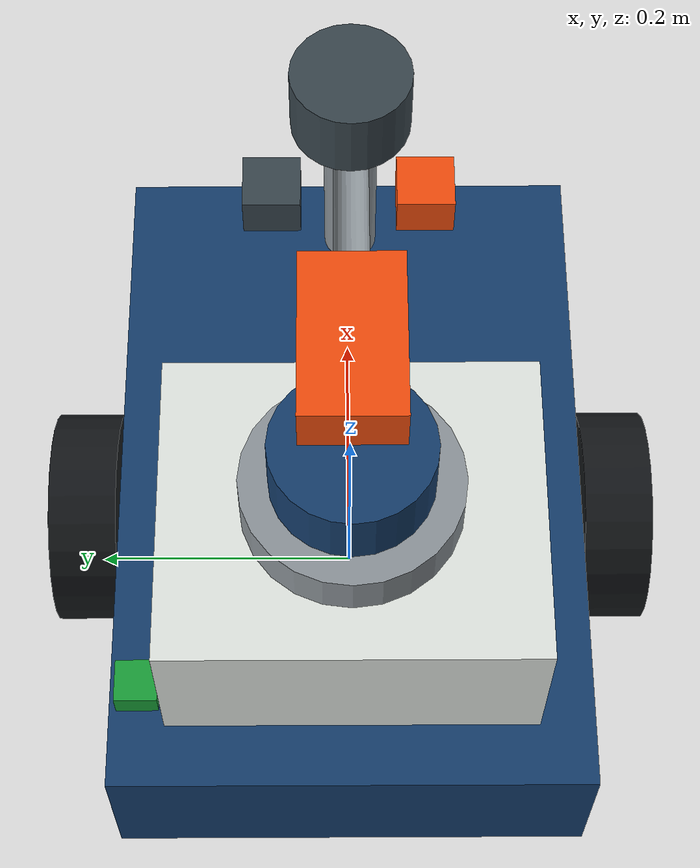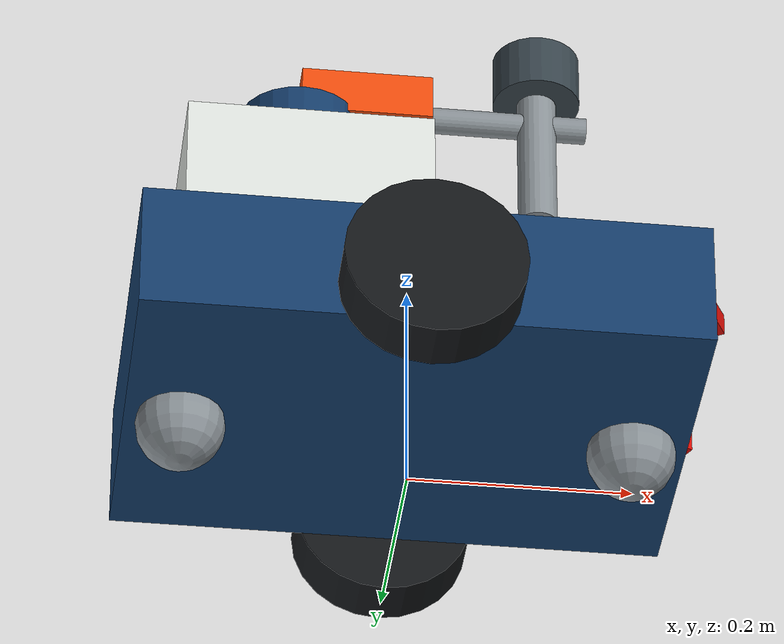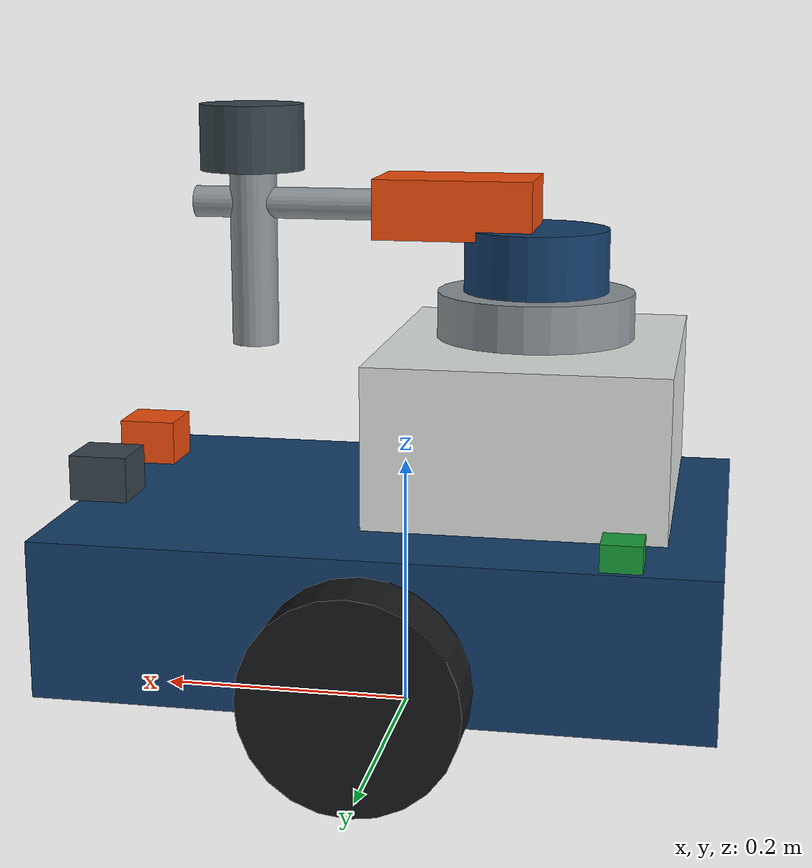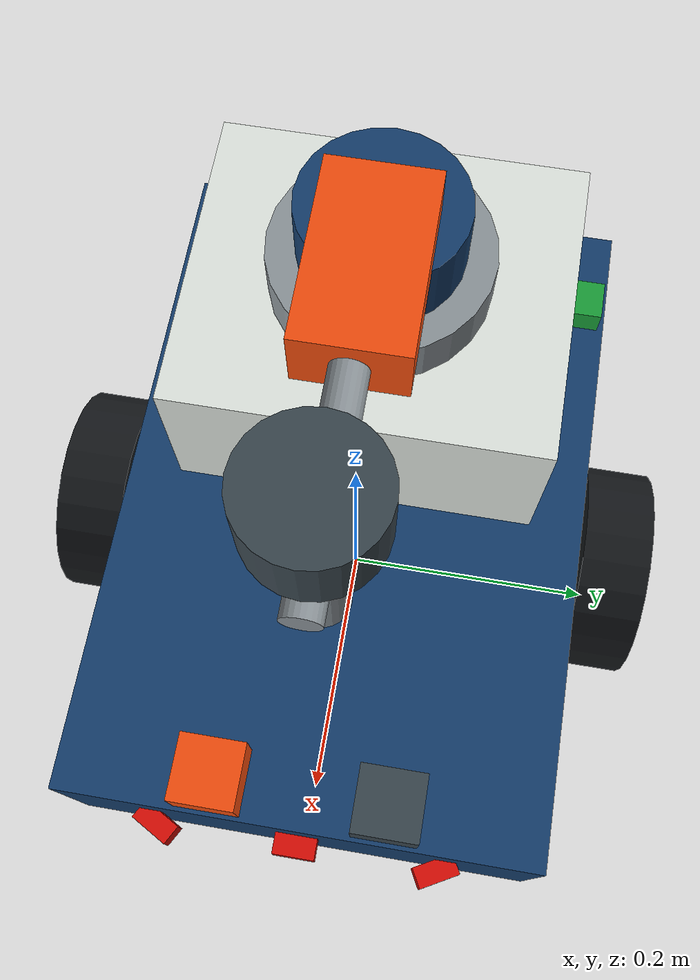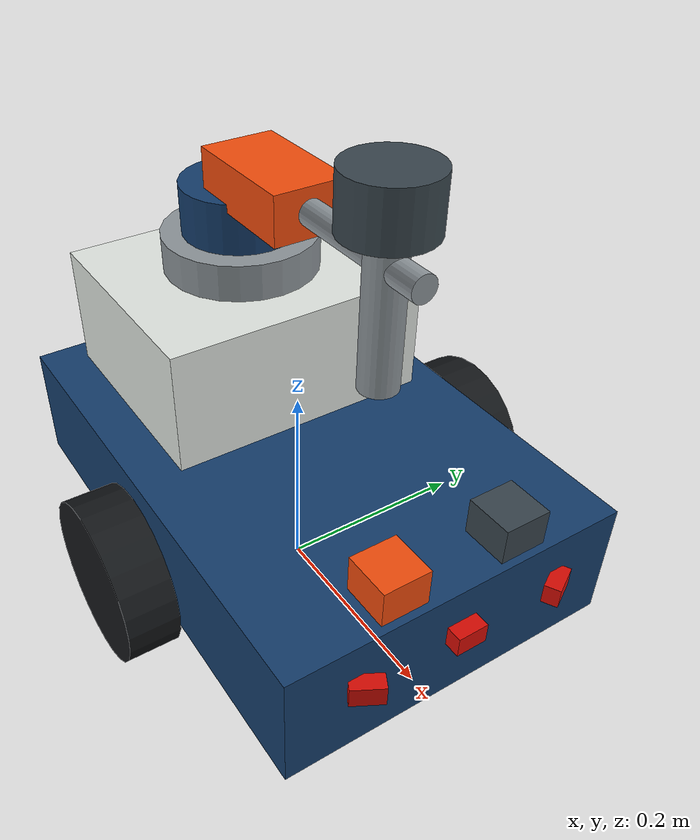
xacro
<robot name="fire_rover" xmlns:xacro="http://www.ros.org/wiki/xacro">
<xacro:arg name="use_sim" default="false"/>
<!--
 ======================= DIMENSIONS (metres / kg) =======================
-->
<!--
 Keep wheel_radius and wheel_separation in sync with config/ros2_controllers.yaml
-->
<xacro:property name="chassis_length" value="0.50"/>
<xacro:property name="chassis_width" value="0.34"/>
<xacro:property name="chassis_height" value="0.12"/>
<xacro:property name="chassis_mass" value="6.0"/>
<xacro:property name="ground_clearance" value="0.05"/>
<!-- height of base_link above the floor -->
<xacro:property name="base_z" value="${ground_clearance + chassis_height/2}"/>
<xacro:property name="wheel_radius" value="0.08"/>
<xacro:property name="wheel_width" value="0.05"/>
<xacro:property name="wheel_mass" value="0.6"/>
<xacro:property name="wheel_separation" value="0.40"/>
<xacro:property name="wheel_x" value="0.0"/>
<xacro:property name="caster_radius" value="0.04"/>
<xacro:property name="caster_mass" value="0.1"/>
<xacro:property name="tank_length" value="0.22"/>
<xacro:property name="tank_width" value="0.26"/>
<xacro:property name="tank_height" value="0.12"/>
<xacro:property name="tank_mass" value="3.0"/>
<!--
 ============================== MODULES =================================
-->
<xacro:include filename="common/materials.xacro"/>
<xacro:include filename="common/inertials.xacro"/>
<xacro:include filename="chassis.xacro"/>
<xacro:include filename="sensors.xacro"/>
<xacro:include filename="turret.xacro"/>
<xacro:include filename="ros2_control.xacro"/>
<xacro:include filename="gazebo.xacro"/>
<!--
 ============================== ASSEMBLY ================================
-->
<!-- Base -->
<xacro:chassis/>
<xacro:drive_wheel name="left" y_pos="${ wheel_separation/2}"/>
<xacro:drive_wheel name="right" y_pos="${-wheel_separation/2}"/>
<xacro:caster name="front" x_pos="${ chassis_length/2 - 0.05}"/>
<xacro:caster name="rear" x_pos="${-chassis_length/2 + 0.05}"/>
<!-- Navigation sensors -->
<xacro:lidar x="0.12" z="0.34"/>
<xacro:box_sensor name="imu" xyz="0 0 0" sx="0.02" sy="0.02" sz="0.005" mass="0.02"/>
<!-- Fire detection sensors (front deck / front face) -->
<xacro:camera name="camera" xyz="0.225 0.06 0.085" mass="0.10"/>
<xacro:camera name="thermal_camera" xyz="0.225 -0.06 0.085" mass="0.05" material="thermal_orange"/>
<!--
 IR flame sensors: left / centre / right, splayed +-0.5 rad for bearing estimation
-->
<xacro:box_sensor name="flame_sensor_left" xyz="0.2575 0.10 0.015" rpy="0 0 0.5" sx="0.015" sy="0.03" sz="0.02" mass="0.01" material="fire_red"/>
<xacro:box_sensor name="flame_sensor_center" xyz="0.2575 0.00 0.015" rpy="0 0 0.0" sx="0.015" sy="0.03" sz="0.02" mass="0.01" material="fire_red"/>
<xacro:box_sensor name="flame_sensor_right" xyz="0.2575 -0.10 0.015" rpy="0 0 -0.5" sx="0.015" sy="0.03" sz="0.02" mass="0.01" material="fire_red"/>
<!-- Gas / smoke sensor, rear deck beside the tank -->
<xacro:box_sensor name="gas_sensor" xyz="-0.18 0.15 0.07" sx="0.03" sy="0.03" sz="0.02" mass="0.02" material="gas_green"/>
<!-- Fire-fighting payload -->
<xacro:water_tank x="-0.10"/>
<xacro:fire_turret/>
<!-- Hardware interface + simulation -->
<xacro:fire_rover_ros2_control/>
<xacro:if value="$(arg use_sim)">
<xacro:gazebo_extensions/>
</xacro:if>
</robot>

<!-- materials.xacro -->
<robot xmlns:xacro="http://www.ros.org/wiki/xacro">
  <material name="rover_blue">
    <color rgba="0.08 0.24 0.42 1.0"/>
  </material>
  <material name="wheel_black">
    <color rgba="0.08 0.09 0.10 1.0"/>
  </material>
  <material name="metal_gray">
    <color rgba="0.55 0.58 0.60 1.0"/>
  </material>
  <material name="sensor_gray">
    <color rgba="0.22 0.27 0.30 1.0"/>
  </material>
  <material name="thermal_orange">
    <color rgba="0.95 0.30 0.05 1.0"/>
  </material>
  <material name="fire_red">
    <color rgba="0.85 0.05 0.02 1.0"/>
  </material>
  <material name="gas_green">
    <color rgba="0.10 0.62 0.22 1.0"/>
  </material>
  <material name="tank_white">
    <color rgba="0.88 0.90 0.88 1.0"/>
  </material>
</robot>

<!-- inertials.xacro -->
<robot xmlns:xacro="http://www.ros.org/wiki/xacro">
  <xacro:macro name="box_inertia" params="mass x y z">
    <inertial>
      <mass value="${mass}"/>
      <inertia
        ixx="${mass * (y * y + z * z) / 12}"
        ixy="0" ixz="0"
        iyy="${mass * (x * x + z * z) / 12}"
        iyz="0"
        izz="${mass * (x * x + y * y) / 12}"/>
    </inertial>
  </xacro:macro>

  <xacro:macro name="cylinder_inertia" params="mass radius length origin_rpy:='0 0 0'">
    <inertial>
      <origin xyz="0 0 0" rpy="${origin_rpy}"/>
      <mass value="${mass}"/>
      <inertia
        ixx="${mass * (3 * radius * radius + length * length) / 12}"
        ixy="0" ixz="0"
        iyy="${mass * (3 * radius * radius + length * length) / 12}"
        iyz="0"
        izz="${mass * radius * radius / 2}"/>
    </inertial>
  </xacro:macro>

  <xacro:macro name="sphere_inertia" params="mass radius">
    <inertial>
      <mass value="${mass}"/>
      <inertia
        ixx="${2 * mass * radius * radius / 5}"
        ixy="0" ixz="0"
        iyy="${2 * mass * radius * radius / 5}"
        iyz="0"
        izz="${2 * mass * radius * radius / 5}"/>
    </inertial>
  </xacro:macro>
</robot>

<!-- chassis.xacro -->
<robot xmlns:xacro="http://www.ros.org/wiki/xacro">
  <xacro:macro name="chassis" params="">
    <link name="base_footprint"/>
    <link name="base_link">
      <xacro:box_inertia mass="${chassis_mass}" x="${chassis_length}" y="${chassis_width}" z="${chassis_height}"/>
      <visual>
        <geometry><box size="${chassis_length} ${chassis_width} ${chassis_height}"/></geometry>
        <material name="rover_blue"/>
      </visual>
      <collision>
        <geometry><box size="${chassis_length} ${chassis_width} ${chassis_height}"/></geometry>
      </collision>
    </link>
    <joint name="base_footprint_joint" type="fixed">
      <parent link="base_footprint"/>
      <child link="base_link"/>
      <origin xyz="0 0 ${base_z}" rpy="0 0 0"/>
    </joint>
  </xacro:macro>

  <xacro:macro name="drive_wheel" params="name y_pos">
    <link name="${name}_wheel_link">
      <xacro:cylinder_inertia mass="${wheel_mass}" radius="${wheel_radius}" length="${wheel_width}" origin_rpy="${pi / 2} 0 0"/>
      <visual>
        <origin xyz="0 0 0" rpy="${pi / 2} 0 0"/>
        <geometry><cylinder radius="${wheel_radius}" length="${wheel_width}"/></geometry>
        <material name="wheel_black"/>
      </visual>
      <collision>
        <origin xyz="0 0 0" rpy="${pi / 2} 0 0"/>
        <geometry><cylinder radius="${wheel_radius}" length="${wheel_width}"/></geometry>
      </collision>
    </link>
    <joint name="${name}_wheel_joint" type="continuous">
      <parent link="base_link"/>
      <child link="${name}_wheel_link"/>
      <origin xyz="${wheel_x} ${y_pos} ${wheel_radius - base_z}" rpy="0 0 0"/>
      <axis xyz="0 1 0"/>
      <dynamics damping="0.05" friction="0.0"/>
    </joint>
  </xacro:macro>

  <xacro:macro name="caster" params="name x_pos">
    <link name="${name}_caster_link">
      <xacro:sphere_inertia mass="${caster_mass}" radius="${caster_radius}"/>
      <visual>
        <geometry><sphere radius="${caster_radius}"/></geometry>
        <material name="metal_gray"/>
      </visual>
      <collision>
        <geometry><sphere radius="${caster_radius}"/></geometry>
      </collision>
    </link>
    <joint name="${name}_caster_joint" type="fixed">
      <parent link="base_link"/>
      <child link="${name}_caster_link"/>
      <origin xyz="${x_pos} 0 ${caster_radius - base_z}" rpy="0 0 0"/>
    </joint>
  </xacro:macro>
</robot>

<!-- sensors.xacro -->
<robot xmlns:xacro="http://www.ros.org/wiki/xacro">
  <xacro:macro name="box_sensor" params="name xyz sx sy sz mass material:=sensor_gray rpy:='0 0 0'">
    <link name="${name}_link">
      <xacro:box_inertia mass="${mass}" x="${sx}" y="${sy}" z="${sz}"/>
      <visual>
        <geometry><box size="${sx} ${sy} ${sz}"/></geometry>
        <material name="${material}"/>
      </visual>
      <collision>
        <geometry><box size="${sx} ${sy} ${sz}"/></geometry>
      </collision>
    </link>
    <joint name="${name}_joint" type="fixed">
      <parent link="base_link"/>
      <child link="${name}_link"/>
      <origin xyz="${xyz}" rpy="${rpy}"/>
    </joint>
  </xacro:macro>

  <xacro:macro name="camera" params="name xyz mass material:=sensor_gray">
    <xacro:box_sensor name="${name}" xyz="${xyz}" sx="0.045" sy="0.045" sz="0.035" mass="${mass}" material="${material}"/>
    <link name="${name}_optical_frame"/>
    <joint name="${name}_optical_joint" type="fixed">
      <parent link="${name}_link"/>
      <child link="${name}_optical_frame"/>
      <origin xyz="0 0 0" rpy="${-pi / 2} 0 ${-pi / 2}"/>
    </joint>
  </xacro:macro>

  <xacro:macro name="lidar" params="x z">
    <link name="lidar_mast_link">
      <xacro:cylinder_inertia mass="0.15" radius="0.018" length="0.16"/>
      <visual>
        <origin xyz="0 0 0" rpy="0 0 0"/>
        <geometry><cylinder radius="0.018" length="0.16"/></geometry>
        <material name="metal_gray"/>
      </visual>
      <collision>
        <origin xyz="0 0 0" rpy="0 0 0"/>
        <geometry><cylinder radius="0.018" length="0.16"/></geometry>
      </collision>
    </link>
    <joint name="lidar_mast_joint" type="fixed">
      <parent link="base_link"/>
      <child link="lidar_mast_link"/>
      <origin xyz="${x} 0 ${z - 0.08}" rpy="0 0 0"/>
    </joint>
    <link name="lidar_link">
      <xacro:cylinder_inertia mass="0.12" radius="0.04" length="0.05"/>
      <visual>
        <geometry><cylinder radius="0.04" length="0.05"/></geometry>
        <material name="sensor_gray"/>
      </visual>
      <collision>
        <geometry><cylinder radius="0.04" length="0.05"/></geometry>
      </collision>
    </link>
    <joint name="lidar_joint" type="fixed">
      <parent link="lidar_mast_link"/>
      <child link="lidar_link"/>
      <origin xyz="0 0 0.08" rpy="0 0 0"/>
    </joint>
  </xacro:macro>
</robot>

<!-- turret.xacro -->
<robot xmlns:xacro="http://www.ros.org/wiki/xacro">
  <xacro:macro name="water_tank" params="x">
    <link name="water_tank_link">
      <xacro:box_inertia mass="${tank_mass}" x="${tank_length}" y="${tank_width}" z="${tank_height}"/>
      <visual>
        <geometry><box size="${tank_length} ${tank_width} ${tank_height}"/></geometry>
        <material name="tank_white"/>
      </visual>
      <collision>
        <geometry><box size="${tank_length} ${tank_width} ${tank_height}"/></geometry>
      </collision>
    </link>
    <joint name="water_tank_joint" type="fixed">
      <parent link="base_link"/>
      <child link="water_tank_link"/>
      <origin xyz="${x} 0 ${chassis_height / 2 + tank_height / 2 + 0.01}" rpy="0 0 0"/>
    </joint>
  </xacro:macro>

  <xacro:macro name="fire_turret" params="">
    <link name="turret_base_link">
      <xacro:cylinder_inertia mass="0.25" radius="0.075" length="0.035"/>
      <visual>
        <geometry><cylinder radius="0.075" length="0.035"/></geometry>
        <material name="metal_gray"/>
      </visual>
      <collision>
        <geometry><cylinder radius="0.075" length="0.035"/></geometry>
      </collision>
    </link>
    <joint name="turret_base_joint" type="fixed">
      <parent link="water_tank_link"/>
      <child link="turret_base_link"/>
      <origin xyz="0 0 ${tank_height / 2 + 0.02}" rpy="0 0 0"/>
    </joint>

    <link name="turret_pan_link">
      <xacro:cylinder_inertia mass="0.20" radius="0.055" length="0.05"/>
      <visual>
        <geometry><cylinder radius="0.055" length="0.05"/></geometry>
        <material name="rover_blue"/>
      </visual>
      <collision>
        <geometry><cylinder radius="0.055" length="0.05"/></geometry>
      </collision>
    </link>
    <joint name="turret_pan_joint" type="revolute">
      <parent link="turret_base_link"/>
      <child link="turret_pan_link"/>
      <origin xyz="0 0 0.04" rpy="0 0 0"/>
      <axis xyz="0 0 1"/>
      <limit lower="-3.14159" upper="3.14159" effort="3.0" velocity="1.0"/>
      <dynamics damping="0.1"/>
    </joint>

    <link name="turret_tilt_link">
      <xacro:box_inertia mass="0.16" x="0.12" y="0.07" z="0.045"/>
      <visual>
        <origin xyz="0.035 0 0" rpy="0 0 0"/>
        <geometry><box size="0.12 0.07 0.045"/></geometry>
        <material name="thermal_orange"/>
      </visual>
      <collision>
        <origin xyz="0.035 0 0" rpy="0 0 0"/>
        <geometry><box size="0.12 0.07 0.045"/></geometry>
      </collision>
    </link>
    <joint name="turret_tilt_joint" type="revolute">
      <parent link="turret_pan_link"/>
      <child link="turret_tilt_link"/>
      <origin xyz="0.025 0 0.04" rpy="0 0 0"/>
      <axis xyz="0 1 0"/>
      <limit lower="-0.35" upper="0.70" effort="2.0" velocity="0.8"/>
      <dynamics damping="0.1"/>
    </joint>

    <link name="nozzle_link">
      <xacro:cylinder_inertia mass="0.08" radius="0.012" length="0.16" origin_rpy="0 ${pi / 2} 0"/>
      <visual>
        <origin xyz="0.08 0 0" rpy="0 ${pi / 2} 0"/>
        <geometry><cylinder radius="0.012" length="0.16"/></geometry>
        <material name="metal_gray"/>
      </visual>
      <collision>
        <origin xyz="0.08 0 0" rpy="0 ${pi / 2} 0"/>
        <geometry><cylinder radius="0.012" length="0.16"/></geometry>
      </collision>
    </link>
    <joint name="nozzle_joint" type="fixed">
      <parent link="turret_tilt_link"/>
      <child link="nozzle_link"/>
      <origin xyz="0.08 0 0" rpy="0 0 0"/>
    </joint>
  </xacro:macro>
</robot>
